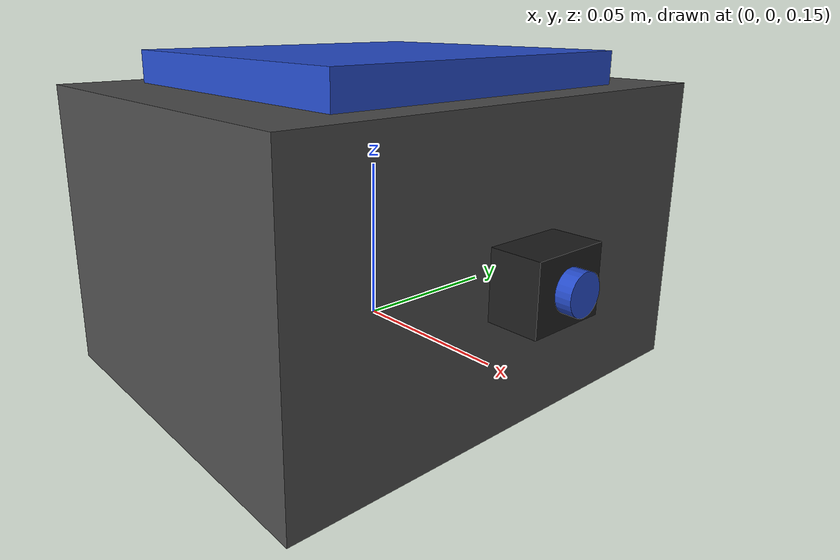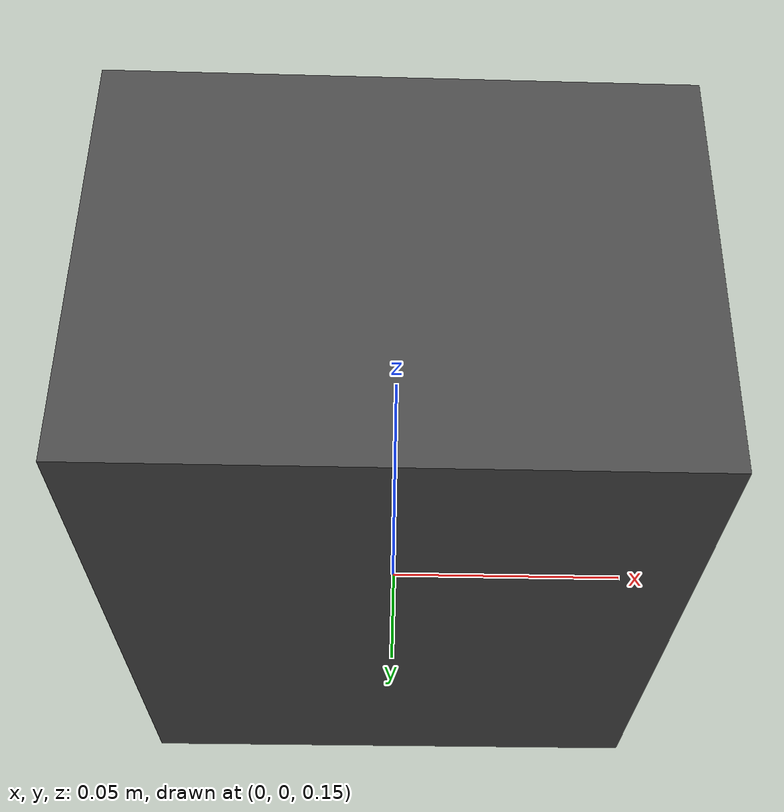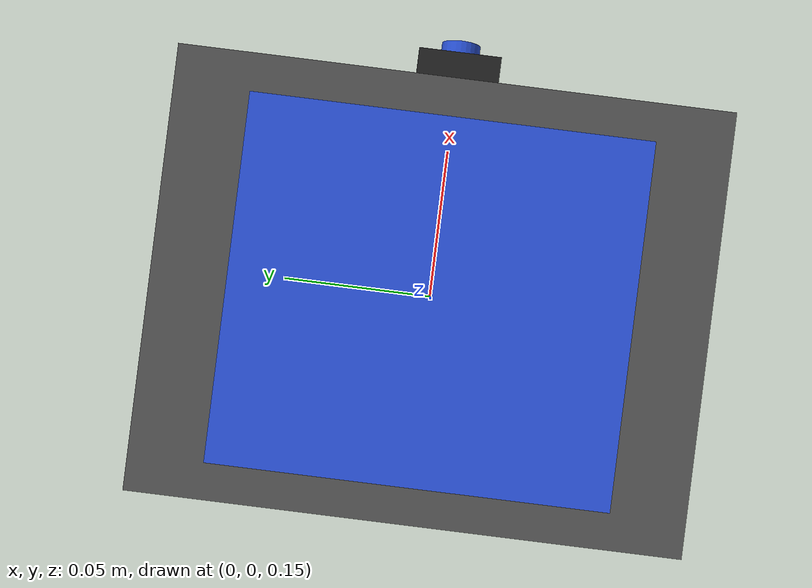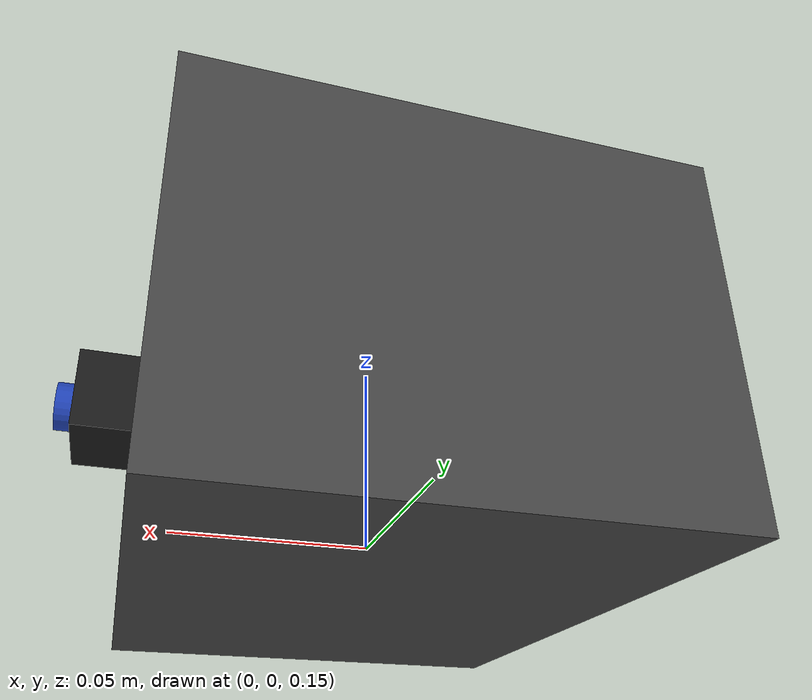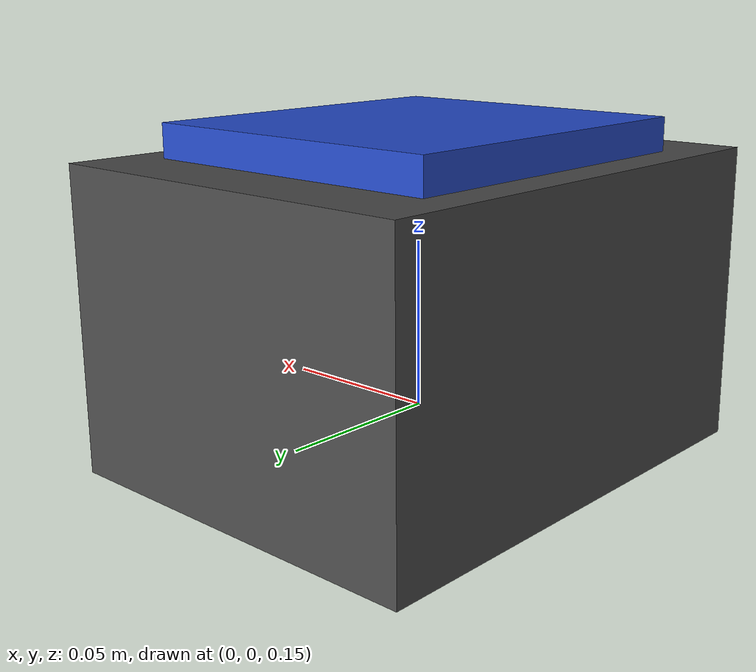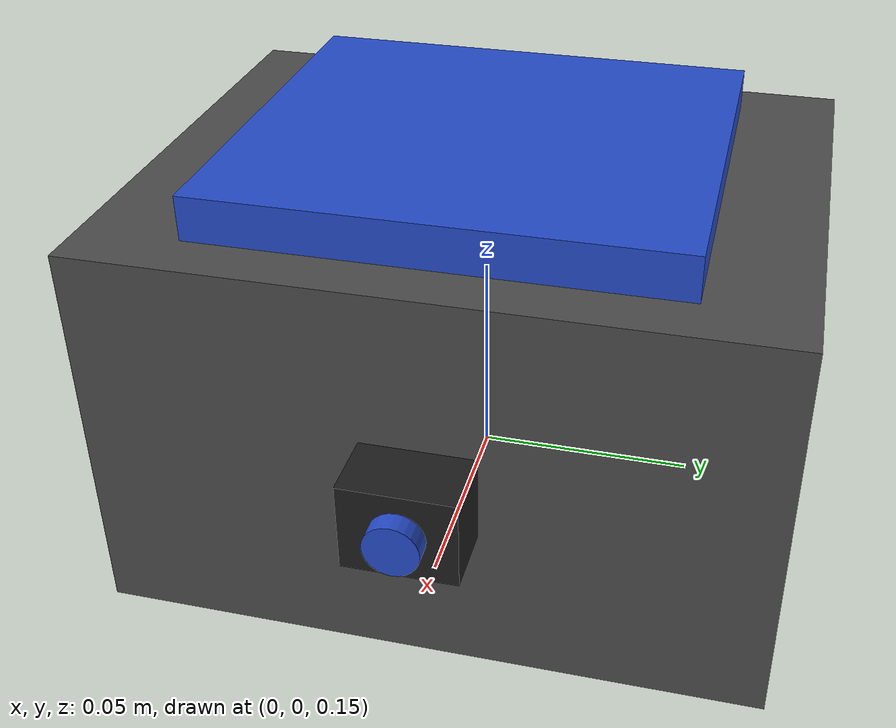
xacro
<?xml version="1.0"?>
<robot xmlns:xacro="http://www.ros.org/wiki/xacro">

  <!-- Torso & Electronics Properties -->
  <xacro:property name="chassis_mass" value="0.75"/>
  <xacro:property name="chassis_length" value="0.12"/>
  <xacro:property name="chassis_width" value="0.15"/>
  <xacro:property name="chassis_height" value="0.09"/>

  <link name="base_footprint"/>

  <joint name="base_footprint_joint" type="fixed">
    <parent link="base_footprint"/>
    <child link="base_link"/>
    <origin xyz="0 0 0.18" rpy="0 0 0"/>
  </joint>

  <!-- Base Link / Torso Link -->
  <link name="base_link">
    <!-- Visual: Main Central Electronics & Battery Box -->
    <visual>
      <origin xyz="0 0 0" rpy="0 0 0"/>
      <geometry>
        <box size="${chassis_length} ${chassis_width} ${chassis_height}"/>
      </geometry>
      <material name="dark_gray"/>
    </visual>

    <!-- Visual: Top Accent Plate (ESP32-S3 Housing) -->
    <visual>
      <origin xyz="0 0 ${chassis_height/2 + 0.005}" rpy="0 0 0"/>
      <geometry>
        <box size="${chassis_length * 0.8} ${chassis_width * 0.7} 0.01"/>
      </geometry>
      <material name="accent_blue"/>
    </visual>

    <!-- Collision -->
    <collision>
      <origin xyz="0 0 0" rpy="0 0 0"/>
      <geometry>
        <box size="${chassis_length} ${chassis_width} ${chassis_height}"/>
      </geometry>
    </collision>

    <!-- Inertial: Chassis Box Inertia -->
    <inertial>
      <origin xyz="0 0 0.01" rpy="0 0 0"/>
      <mass value="${chassis_mass}"/>
      <inertia
        ixx="${(chassis_mass / 12.0) * (chassis_width*chassis_width + chassis_height*chassis_height)}"
        ixy="0.0"
        ixz="0.0"
        iyy="${(chassis_mass / 12.0) * (chassis_length*chassis_length + chassis_height*chassis_height)}"
        iyz="0.0"
        izz="${(chassis_mass / 12.0) * (chassis_length*chassis_length + chassis_width*chassis_width)}"/>
    </inertial>
  </link>

  <!-- MPU6050 IMU Sensor Link & Mount -->
  <link name="imu_link">
    <visual>
      <origin xyz="0 0 0" rpy="0 0 0"/>
      <geometry>
        <box size="0.02 0.02 0.004"/>
      </geometry>
      <material name="gold"/>
    </visual>
    <inertial>
      <origin xyz="0 0 0" rpy="0 0 0"/>
      <mass value="0.005"/>
      <inertia ixx="1e-6" ixy="0" ixz="0" iyy="1e-6" iyz="0" izz="1e-6"/>
    </inertial>
  </link>

  <joint name="imu_joint" type="fixed">
    <parent link="base_link"/>
    <child link="imu_link"/>
    <origin xyz="0 0 0.02" rpy="0 0 0"/>
  </joint>

  <!-- ==================== Forward Vision Camera ==================== -->
  <link name="camera_link">
    <!-- Camera Body Housing -->
    <visual>
      <origin xyz="0 0 0" rpy="0 0 0"/>
      <geometry>
        <box size="0.015 0.025 0.020"/>
      </geometry>
      <material name="rubber_black"/>
    </visual>
    <!-- Camera Optical Lens Barrel -->
    <visual>
      <origin xyz="0.009 0 0" rpy="0 ${pi/2} 0"/>
      <geometry>
        <cylinder radius="0.006" length="0.006"/>
      </geometry>
      <material name="accent_blue"/>
    </visual>
    <collision>
      <origin xyz="0.004 0 0" rpy="0 0 0"/>
      <geometry>
        <box size="0.022 0.025 0.020"/>
      </geometry>
    </collision>
    <inertial>
      <origin xyz="0 0 0" rpy="0 0 0"/>
      <mass value="0.015"/>
      <inertia ixx="1e-6" ixy="0" ixz="0" iyy="1e-6" iyz="0" izz="1e-6"/>
    </inertial>
  </link>

  <joint name="camera_joint" type="fixed">
    <parent link="base_link"/>
    <child link="camera_link"/>
    <origin xyz="${chassis_length/2 + 0.0075} 0 0.0" rpy="0 0 0"/>
  </joint>

  <!-- Standard ROS camera optical frame (Z forward, X right, Y down) -->
  <link name="camera_optical_link"/>
  <joint name="camera_optical_joint" type="fixed">
    <parent link="camera_link"/>
    <child link="camera_optical_link"/>
    <origin xyz="0.012 0 0" rpy="${-pi/2} 0 ${-pi/2}"/>
  </joint>

</robot>
